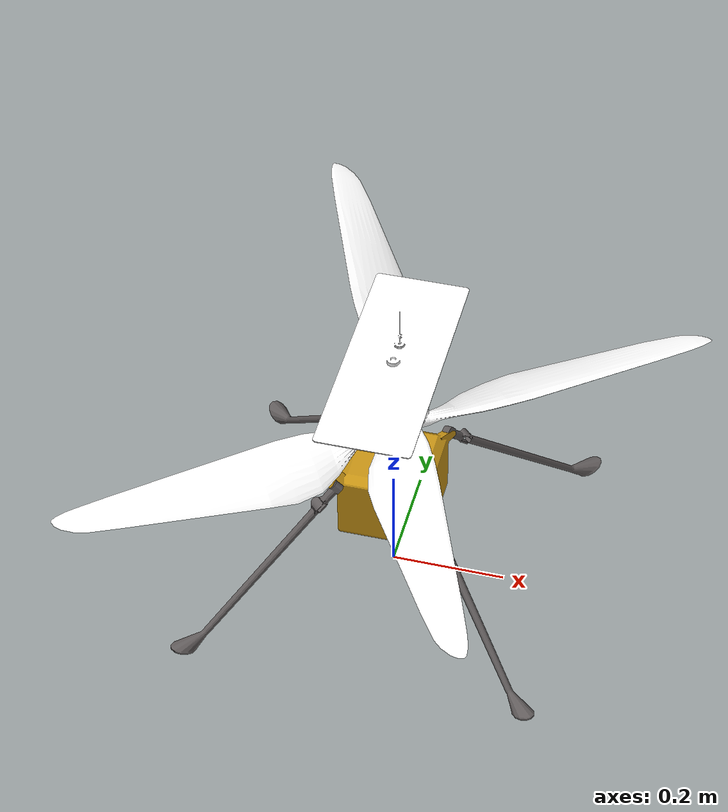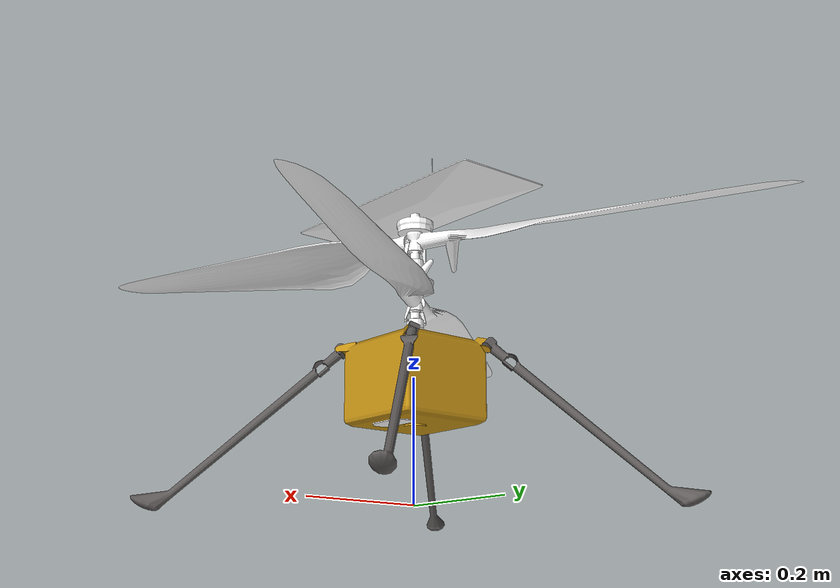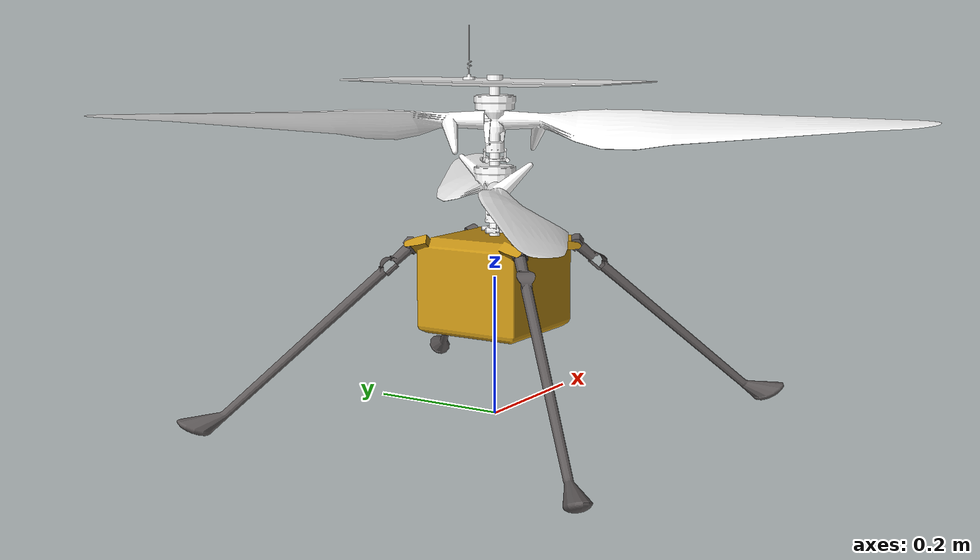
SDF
<sdf version='1.9'>
  <model name='ingenuity'>

    <plugin name="simulation::RotorPlugin" filename="libRotorPlugin.so">
      <!-- Plugin parameters (if any) -->
      <link_name>bus_link</link_name>
      <joint_name>rotor_bottom_revolute</joint_name>
      <link_to_hub_frame> 0 0 0.135611 3.14159265358979 0 0</link_to_hub_frame> <!-- relative pose between link and hub frame -->
      <force_model>base</force_model>
      <flapping_model>gordon</flapping_model> <!-- center_spring, offset_spring -->
      <inflow_model>harmonic_1</inflow_model> <!-- uniform, harmonic_1, dynamic -->
      <config>
        <blade>
          <chord>0.1029</chord>
          <radius>0.514334</radius>
          <lift_slope>5.73</lift_slope>
          <drag_quadric>0.14875</drag_quadric>
          <drag_constant>0.0738</drag_constant>
          <twist_slope>0.01</twist_slope>
          <blade_inertia>0.005</blade_inertia>
        </blade>
        <direction>cw</direction>
        <hinge_stiffness>4.5680</hinge_stiffness>
        <num_blades>2</num_blades>
        <rotor_inertia>10</rotor_inertia>
      </config>
    </plugin>
    <plugin name="simulation::RotorPlugin" filename="libRotorPlugin.so">
      <!-- Plugin parameters (if any) -->
      <link_name>bus_link</link_name>
      <joint_name>rotor_top_revolute</joint_name>
      <link_to_hub_frame> 0 0 0.234393 3.14159265358979 0 0</link_to_hub_frame> <!-- relative pose between link and hub frame -->
      <force_model>base</force_model>
      <flapping_model>gordon</flapping_model> <!-- center_spring, offset_spring -->
      <inflow_model>harmonic_1</inflow_model> <!-- uniform, harmonic_1, dynamic -->
      <config>
        <blade>
          <chord>0.1029</chord>
          <radius>0.514334</radius>
          <lift_slope>5.73</lift_slope>
          <drag_quadric>0.14875</drag_quadric>
          <drag_constant>0.0738</drag_constant>
          <twist_slope>0.01</twist_slope>
          <blade_inertia>0.005</blade_inertia>
        </blade>
        <direction>ccw</direction>
        <hinge_stiffness>4.5680</hinge_stiffness>
        <num_blades>2</num_blades>
        <rotor_inertia>10</rotor_inertia>
      </config>
    </plugin>
    <link name='bus_link'>
      <sensor name="imu_sensor" type="imu">
        <always_on>1</always_on>
        <update_rate>1</update_rate>
        <visualize>true</visualize>
        <topic>ingenuity/sensors/imu</topic>
      </sensor>
      <sensor name="rgb_camera" type="camera">
        <update_rate>30.0</update_rate>
        <pose>0.08360 -0.00000 0.13905 -0.00000 0.00000 -0.00000</pose>
        <topic>ingenuity/sensors/rgb_camera/image_raw</topic>
        <camera>
          <horizontal_fov>1.047</horizontal_fov>
          <image>
            <width>640</width>
            <height>480</height>
            <format>R8G8B8</format>
          </image>
          <clip>
            <near>0.1</near>
            <far>100</far>
          </clip>
        </camera>
      </sensor>
      <sensor name="mono_camera" type="camera">
        <update_rate>30.0</update_rate>
        <pose>0.04272 -0.00000 0.11860 0.00000 1.57079 -0.00000</pose>
        <topic>ingenuity/sensors/mono_camera/image_raw</topic>
        <camera>
          <horizontal_fov>1.047</horizontal_fov>
          <image>
            <width>640</width>
            <height>480</height>
            <format>L8</format>
          </image>
          <clip>
            <near>0.1</near>
            <far>100</far>
          </clip>
        </camera>
      </sensor>
      <sensor name="laser_altimeter" type="gpu_lidar">
        <pose>0.00000 -0.00000 0.11849 0.00000 1.57079 -0.00000</pose>
        <topic>ingenuity/sensors/laser_altimeter/range</topic>
        <update_rate>10</update_rate>
        <ray>
          <scan>
            <horizontal>
              <samples>1</samples>
              <resolution>1</resolution>
              <min_angle>0</min_angle>
              <max_angle>0</max_angle>
            </horizontal>
          </scan>
          <range>
            <min>0.1</min>
            <max>100.0</max>
            <resolution>0.01</resolution>
          </range>
        </ray>
        <always_on>1</always_on>
        <visualize>true</visualize>
      </sensor>
      <inertial>
        <pose>-0.001717895331713077 -0.0001335969035377958 0.2231068439155114 0 0 0</pose>
        <mass>1.65001</mass>
        <inertia>
          <ixx>0.021412725930734899</ixx>
          <ixy>-2.12596120994955e-05</ixy>
          <ixz>0.0006814887419926578</ixz>
          <iyy>0.02152532863069374</iyy>
          <iyz>3.9459653120838007e-05</iyz>
          <izz>0.01177586923244566</izz>
        </inertia>
      </inertial>
      <collision name='bus_link_fixed_joint_lump__bus_collision_collision'>
        <pose>-0.00173 -0.00028 0.19285 0 0 0</pose>
        <geometry>
          <box>
            <size>0.16027 0.17496 0.12719</size>
          </box>
        </geometry>
      </collision>
      <collision name='bus_link_fixed_joint_lump__leg_01_collision_collision_1'>
        <pose>-0.1854262536336258 -0.1894747913901264 0.1238849584043207 2.777458959292959 -0.8166615955175173 -1.894284990868846</pose>
        <geometry>
          <cylinder>
            <length>0.37452999999999997</length>
            <radius>0.0081799999999999998</radius>
          </cylinder>
        </geometry>
      </collision>
      <collision name='bus_link_fixed_joint_lump__leg_01_collision.000_collision_2'>
        <pose>-0.2764608135352618 -0.2777288381753926 -5.953810980618979e-06 -5.924260497106902e-06 2.969117631295452e-06 -6.363650397263836e-07</pose>
        <geometry>
          <box>
            <size>0.05003 0.05078 0.00654</size>
          </box>
        </geometry>
      </collision>
      <collision name='bus_link_fixed_joint_lump__leg_02_collision_collision_3'>
        <pose>-0.1828355155677839 0.188258148126831 0.1285011890196975 0.3453209952500232 -0.8304963725721402 1.915425708812376</pose>
        <geometry>
          <cylinder>
            <length>0.39199000000000001</length>
            <radius>0.0088199999999999997</radius>
          </cylinder>
        </geometry>
      </collision>
      <collision name='bus_link_fixed_joint_lump__leg_02_collision.000_collision_4'>
        <pose>-0.2815384471786287 0.2853479502849668 -6.042326709324031e-06 5.924260497106902e-06 2.969117631295452e-06 6.363650397263836e-07</pose>
        <geometry>
          <box>
            <size>0.05465 0.05463 0.00831</size>
          </box>
        </geometry>
      </collision>
      <collision name='bus_link_fixed_joint_lump__leg_03_collision_collision_5'>
        <pose>0.1822050820073783 -0.1867089092332663 0.1280133764396424 -2.521257845900247 -0.6783553822030131 -1.617501499947452</pose>
        <geometry>
          <cylinder>
            <length>0.38151000000000002</length>
            <radius>0.010149999999999999</radius>
          </cylinder>
        </geometry>
      </collision>
      <collision name='bus_link_fixed_joint_lump__leg_03_collision.000_collision_6'>
        <pose>0.2819680552084523 -0.2838991727007909 7.292345194170879e-06 1.410520619593296e-06 6.91617370004786e-06 5.958781849152967e-06</pose>
        <geometry>
          <box>
            <size>0.05669 0.05868 0.0069</size>
          </box>
        </geometry>
      </collision>
      <collision name='bus_link_fixed_joint_lump__leg_04_collision_collision_7'>
        <pose>0.1811766491108562 0.188248446225405 0.1274498153122322 -1.371084355382006 0.1038853344532227 0.6595169151965113</pose>
        <geometry>
          <cylinder>
            <length>0.38625999999999999</length>
            <radius>0.0089599999999999992</radius>
          </cylinder>
        </geometry>
      </collision>
      <collision name='bus_link_fixed_joint_lump__leg_04_collision.000_collision_8'>
        <pose>0.2750211772429224 0.2797047478283849 -1.075766546121404e-06 1.089172346082227e-05 -4.277306343095126e-06 -8.148381452713485e-06</pose>
        <geometry>
          <box>
            <size>0.06401 0.06185 0.00887</size>
          </box>
        </geometry>
      </collision>
      <collision name='bus_link_fixed_joint_lump__parts_02_collision_collision_9'>
        <pose>-0.00183 -0.00031 0.30211 0 0 0</pose>
        <geometry>
          <cylinder>
            <length>0.062530000000000002</length>
            <radius>0.016490000000000001</radius>
          </cylinder>
        </geometry>
      </collision>
      <collision name='bus_link_fixed_joint_lump__parts_01_collision_collision_10'>
        <pose>-0.00183 -0.00031 0.39535 0 0 0</pose>
        <geometry>
          <cylinder>
            <length>0.061150000000000003</length>
            <radius>0.016650000000000002</radius>
          </cylinder>
        </geometry>
      </collision>
      <collision name='bus_link_fixed_joint_lump__solar_panel_collision_collision_11'>
        <pose>-0.001780028786916781 -0.0002899999998942582 0.481449999999909 -1.57079 -5.551115123125783e-17 -1.5708</pose>
        <geometry>
          <box>
            <size>0.42732 0.01639 0.1659</size>
          </box>
        </geometry>
      </collision>
      <visual name='bus_link_fixed_joint_lump__bus_visual'>
        <pose>-0.00179 -0.00028 0.19194 0 -1.570796326794897 0</pose>
        <geometry>
          <mesh>
            <scale>0.12951 0.12951 0.12951</scale>
            <uri>../meshes/dae/Cube.012.dae</uri>
          </mesh>
        </geometry>
        <material>
          <diffuse>0.774513 0.573525 0.0784375 1</diffuse>
          <ambient>0.774513 0.573525 0.0784375 1</ambient>
        </material>
      </visual>
      <visual name='bus_link_fixed_joint_lump__cams_visual_1'>
        <pose>0.04323 -0.00028 0.12401 0 0 0</pose>
        <geometry>
          <mesh>
            <scale>1 1 1</scale>
            <uri>../meshes/dae/Cube.002.dae</uri>
          </mesh>
        </geometry>
        <material>
          <diffuse>1 1 1 1</diffuse>
          <ambient>1 1 1 1</ambient>
        </material>
      </visual>
      <visual name='bus_link_fixed_joint_lump__leg_01_visual_2'>
        <pose>-0.18488 -0.1895 0.12805 1.15509 -0.8008400000000002 -1.88343</pose>
        <geometry>
          <mesh>
            <scale>1 1 1</scale>
            <uri>../meshes/dae/MHP_JR_AV_ROTOR_STOWED_120717_A1-STOWED ROTOR ASSEMBLY, 120.056.dae</uri>
          </mesh>
        </geometry>
        <material>
          <diffuse>0.37255 0.352938 0.352938 1</diffuse>
          <ambient>0.37255 0.352938 0.352938 1</ambient>
        </material>
      </visual>
      <visual name='bus_link_fixed_joint_lump__leg_02_visual_3'>
        <pose>-0.20707 0.21027 0.103 -1.15509 -0.8008400000000002 1.88343</pose>
        <geometry>
          <mesh>
            <scale>1 1 1</scale>
            <uri>../meshes/dae/MHP_JR_AV_ROTOR_STOWED_120717_A1-STOWED ROTOR ASSEMBLY, 120.027.dae</uri>
          </mesh>
        </geometry>
        <material>
          <diffuse>0.37255 0.352938 0.352938 1</diffuse>
          <ambient>0.37255 0.352938 0.352938 1</ambient>
        </material>
      </visual>
      <visual name='bus_link_fixed_joint_lump__leg_03_visual_4'>
        <pose>0.20537 -0.21072 0.10346 1.48526 -0.04070999999999995 -0.7195599999999999</pose>
        <geometry>
          <mesh>
            <scale>1 1 1</scale>
            <uri>../meshes/dae/Cylinder.028.dae</uri>
          </mesh>
        </geometry>
        <material>
          <diffuse>0.37255 0.352938 0.352938 1</diffuse>
          <ambient>0.37255 0.352938 0.352938 1</ambient>
        </material>
      </visual>
      <visual name='bus_link_fixed_joint_lump__leg_04_visual_5'>
        <pose>0.20365 0.21092 0.10403 -1.47407 -0.0356899999999999 0.7204900000000001</pose>
        <geometry>
          <mesh>
            <scale>1 1 1</scale>
            <uri>../meshes/dae/Cylinder.019.dae</uri>
          </mesh>
        </geometry>
        <material>
          <diffuse>0.37255 0.352938 0.352938 1</diffuse>
          <ambient>0.37255 0.352938 0.352938 1</ambient>
        </material>
      </visual>
      <visual name='bus_link_fixed_joint_lump__parts_02_visual_6'>
        <pose>-0.00183 -0.00031 0.28398 0 0 0</pose>
        <geometry>
          <mesh>
            <scale>1 1 1</scale>
            <uri>../meshes/dae/Cylinder.035.dae</uri>
          </mesh>
        </geometry>
        <material>
          <diffuse>1 1 1 1</diffuse>
          <ambient>1 1 1 1</ambient>
        </material>
      </visual>
      <visual name='bus_link_fixed_joint_lump__parts_01_visual_7'>
        <pose>-0.00183 -0.00031 0.38298 0 0 0</pose>
        <geometry>
          <mesh>
            <scale>1 1 1</scale>
            <uri>../meshes/dae/Cylinder.005.dae</uri>
          </mesh>
        </geometry>
        <material>
          <diffuse>1 1 1 1</diffuse>
          <ambient>1 1 1 1</ambient>
        </material>
      </visual>
      <visual name='bus_link_fixed_joint_lump__solar_panel_visual_8'>
        <pose>-0.00178 -0.00029 0.4769 -1.57079 -5.551115123125783e-17 -1.5708</pose>
        <geometry>
          <mesh>
            <scale>1 1 1</scale>
            <uri>../meshes/dae/10460522-1_2_B1-SOLAR PANEL SUBSTRATE_5781_FILLET5.003.dae</uri>
          </mesh>
        </geometry>
        <material>
          <diffuse>1 1 1 1</diffuse>
          <ambient>1 1 1 1</ambient>
        </material>
      </visual>
    </link>
    <joint name='rotor_top_revolute' type='revolute'>
      <pose relative_to='bus_link'>-0.00183 -0.00031 0.42539 -0.06234265359747009 -1.570792653666219 0.4114126536002093</pose>
      <parent>bus_link</parent>
      <child>rotors_01_link</child>
      <axis>
        <xyz>1 0 0</xyz>
        <limit>
          <lower>-1.7976931348623157e+308</lower>
          <upper>1.7976931348623157e+308</upper>
          <effort>10000.0</effort>
          <velocity>500.0</velocity>
        </limit>
        <dynamics>
          <spring_reference>0</spring_reference>
          <spring_stiffness>0</spring_stiffness>
        </dynamics>
      </axis>
    </joint>
    <link name='rotors_01_link'>
      <pose relative_to='rotor_top_revolute'>0 0 0 0 0 0</pose>
      <inertial>
        <pose>-0.00336 -0.00199 -0.0022 0 0 0</pose>
        <mass>0.074999999999999997</mass>
        <inertia>
          <ixx>0.0030699999999999998</ixx>
          <ixy>0.00052999999999999998</ixy>
          <ixz>0</ixz>
          <iyy>0.002</iyy>
          <iyz>-0.00044999999999999999</iyz>
          <izz>0.0035999999999999999</izz>
        </inertia>
      </inertial>
      <collision name='rotors_01_link_fixed_joint_lump__rotors_01_collision_collision'>
        <pose>-0.00336 -0.33594 -0.00439 0.01134 0 0</pose>
        <geometry>
          <box>
            <size>0.03913 0.52765 0.10916</size>
          </box>
        </geometry>
      </collision>
      <collision name='rotors_01_link_fixed_joint_lump__rotors_01_collision.000_collision_1'>
        <pose>-0.00336 0.33195 0 0 0 0</pose>
        <geometry>
          <box>
            <size>0.03913 0.52177 0.11864</size>
          </box>
        </geometry>
      </collision>
      <visual name='rotors_01_link_fixed_joint_lump__rotors_01_visual'>
        <pose>0 0 0 0 0 0</pose>
        <geometry>
          <mesh>
            <scale>1 1 1</scale>
            <uri>../meshes/dae/Cylinder.017.dae</uri>
          </mesh>
        </geometry>
        <material>
          <diffuse>1 1 1 1</diffuse>
          <ambient>1 1 1 1</ambient>
        </material>
      </visual>
    </link>
    <joint name='rotor_bottom_revolute' type='revolute'>
      <pose relative_to='bus_link'>-0.00196 -0.0004 0.32813 0.2166126535787306 1.570792653666219 -0.656052653598997</pose>
      <parent>bus_link</parent>
      <child>rotors_02_link</child>
      <axis>
        <xyz>1 0 0</xyz>
        <limit>
          <lower>-1.7976931348623157e+308</lower>
          <upper>1.7976931348623157e+308</upper>
          <effort>10000.0</effort>
          <velocity>500.0</velocity>
        </limit>
        <dynamics>
          <spring_reference>0</spring_reference>
          <spring_stiffness>0</spring_stiffness>
        </dynamics>
      </axis>
    </joint>
    <link name='rotors_02_link'>
      <pose relative_to='rotor_bottom_revolute'>0 0 0 0 0 0</pose>
      <inertial>
        <pose>0.00448 -0.00614 0.0018 0 0 0</pose>
        <mass>0.074999999999999997</mass>
        <inertia>
          <ixx>0.0035000000000000001</ixx>
          <ixy>-0.00059000000000000003</ixy>
          <ixz>0.00012</ixz>
          <iyy>0.002</iyy>
          <iyz>-0.0013500000000000001</iyz>
          <izz>0.0036900000000000001</izz>
        </inertia>
      </inertial>
      <collision name='rotors_02_link_fixed_joint_lump__rotors_02_collision_collision'>
        <pose>0.00448 0.33949 0.009050000000000001 0.05548 0 0</pose>
        <geometry>
          <box>
            <size>0.02635 0.5215 0.11376</size>
          </box>
        </geometry>
      </collision>
      <collision name='rotors_02_link_fixed_joint_lump__rotors_02_collision.000_collision_1'>
        <pose>0.00448 -0.35177 -0.00544 0.03778000000000001 0 0</pose>
        <geometry>
          <box>
            <size>0.03861 0.50696 0.09597</size>
          </box>
        </geometry>
      </collision>
      <visual name='rotors_02_link_fixed_joint_lump__rotors_02_visual'>
        <pose>0 0 0 0 0 0</pose>
        <geometry>
          <mesh>
            <scale>1 1 1</scale>
            <uri>../meshes/dae/Cylinder.014.dae</uri>
          </mesh>
        </geometry>
        <material>
          <diffuse>1 1 1 1</diffuse>
          <ambient>1 1 1 1</ambient>
        </material>
      </visual>
    </link>
    <frame name='cams_link_joint' attached_to='bus_link'>
      <pose>0.04323 -0.00028 0.12401 0 0 0</pose>
    </frame>
    <frame name='cams_link' attached_to='cams_link_joint'/>
    <frame name='leg_01_link_joint' attached_to='bus_link'>
      <pose>-0.18488 -0.1895 0.12805 1.15509 -0.80084 -1.88343</pose>
    </frame>
    <frame name='leg_01_link' attached_to='leg_01_link_joint'/>
    <frame name='leg_02_link_joint' attached_to='bus_link'>
      <pose>-0.20707 0.21027 0.103 -1.15509 -0.80084 1.88343</pose>
    </frame>
    <frame name='leg_02_link' attached_to='leg_02_link_joint'/>
    <frame name='leg_03_link_joint' attached_to='bus_link'>
      <pose>0.20537 -0.21072 0.10346 1.48526 -0.04071 -0.71956</pose>
    </frame>
    <frame name='leg_03_link' attached_to='leg_03_link_joint'/>
    <frame name='leg_04_link_joint' attached_to='bus_link'>
      <pose>0.20365 0.21092 0.10403 -1.47407 -0.03569 0.72049</pose>
    </frame>
    <frame name='leg_04_link' attached_to='leg_04_link_joint'/>
    <frame name='solar_panel_link_joint' attached_to='parts_01_link'>
      <pose>5e-05 2e-05 0.09392 -1.57079 -0 -1.5708</pose>
    </frame>
    <frame name='solar_panel_link' attached_to='solar_panel_link_joint'/>
    <frame name='parts_01_link_joint' attached_to='parts_02_link'>
      <pose>-0 0 0.099 0 -0 0</pose>
    </frame>
    <frame name='parts_01_link' attached_to='parts_01_link_joint'/>
    <frame name='parts_02_link_joint' attached_to='bus_link'>
      <pose>-0.00183 -0.00031 0.28398 0 -0 0</pose>
    </frame>
    <frame name='parts_02_link' attached_to='parts_02_link_joint'/>
  </model>
</sdf>
